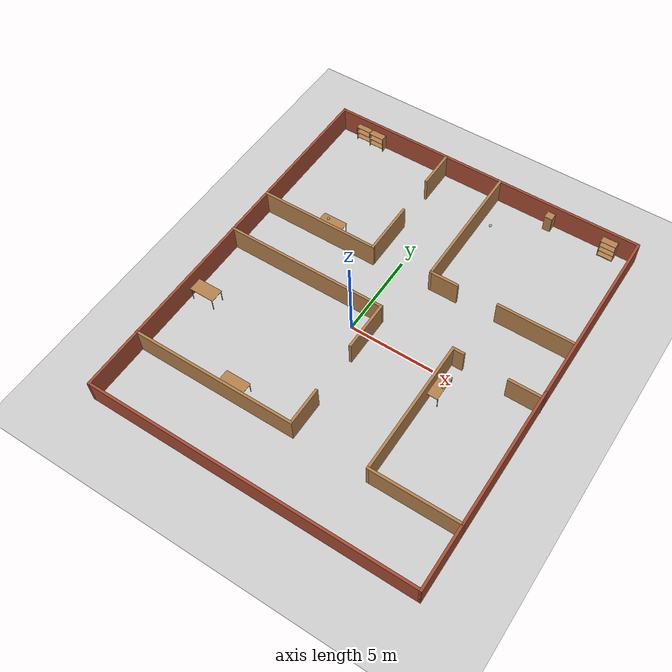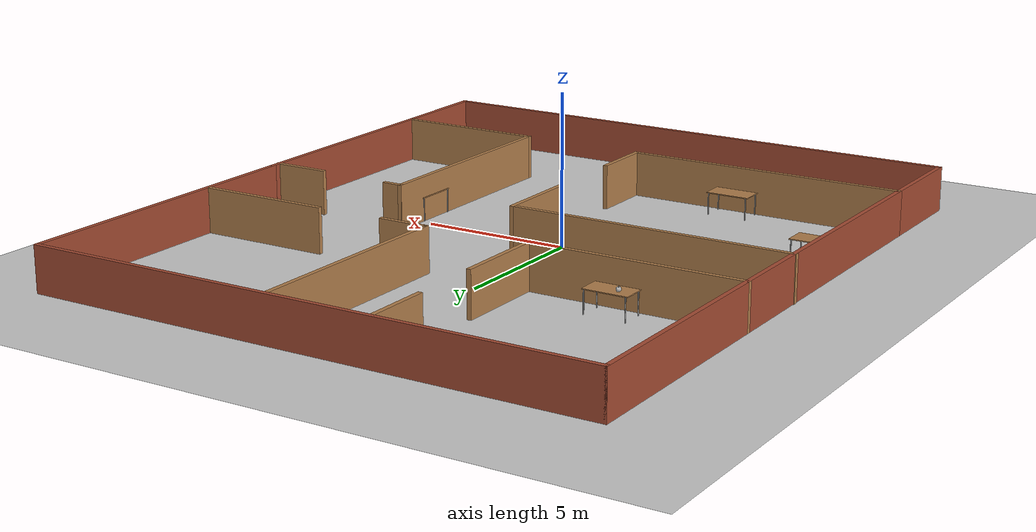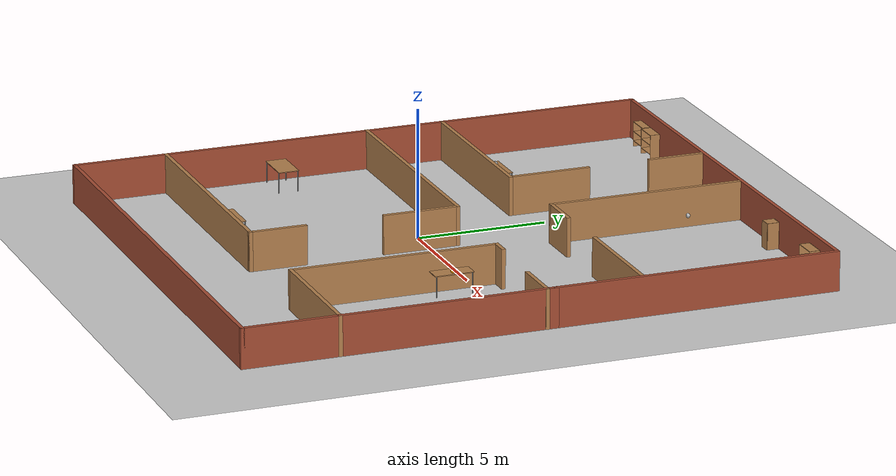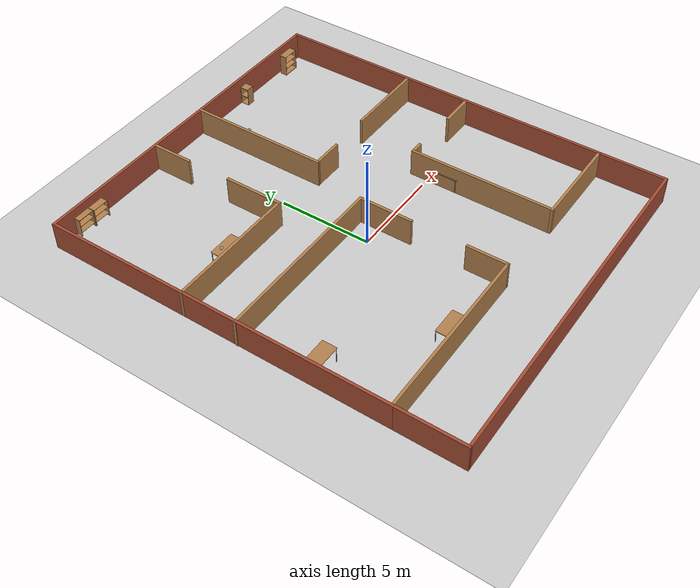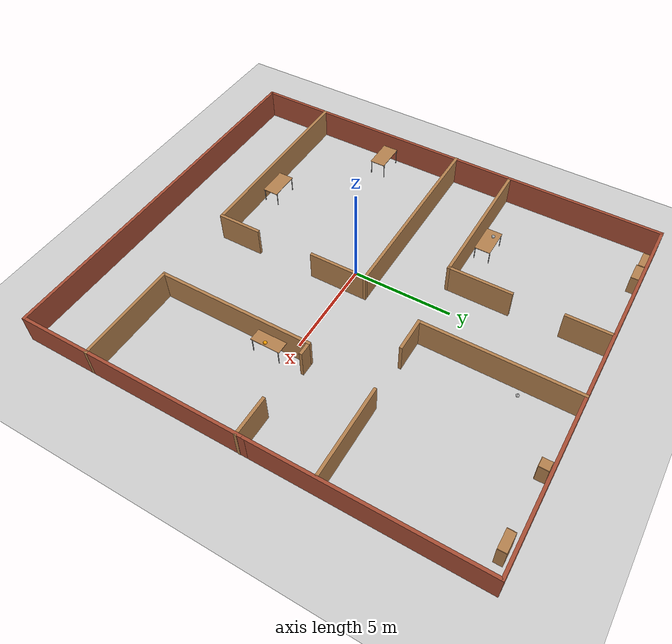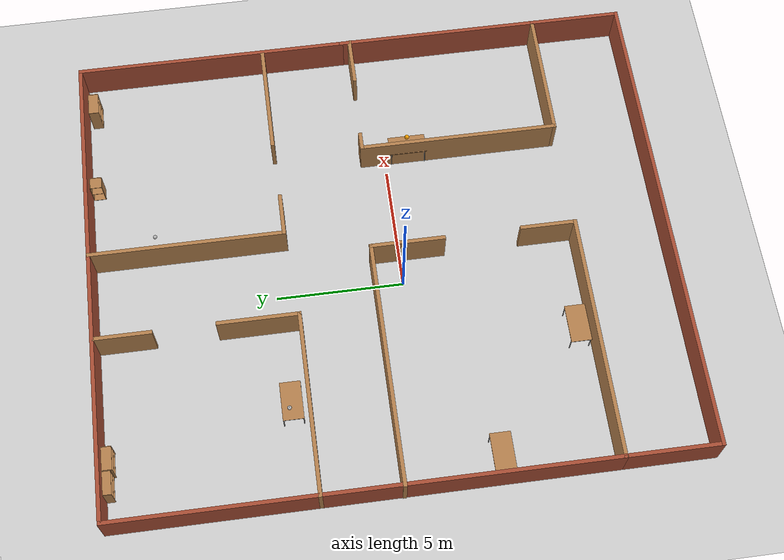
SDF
<sdf version="1.6">
 <world name="default">
  <light name="sun" type="directional">
   <pose>0 0 10 0 -0 0</pose>
   <diffuse>0.8 0.8 0.8 1</diffuse>
   <specular>0.2 0.2 0.2 1</specular>
   <attenuation>
    <range>1000</range>
    <constant>0.9</constant>
    <linear>0.01</linear>
    <quadratic>0.001</quadratic>
   </attenuation>
   <direction>-0.5 0.1 -0.9</direction>
  </light>
  <model name="ground_plane">
   <static>1</static>
   <link name="link">
    <collision name="collision">
     <geometry><plane><normal>0 0 1</normal><size>100 100</size></plane></geometry>
     <surface>
      <contact><collide_bitmask>65535</collide_bitmask></contact>
      <friction><ode><mu>100</mu><mu2>50</mu2></ode></friction>
     </surface>
    </collision>
    <visual name="visual">
     <cast_shadows>0</cast_shadows>
     <geometry><plane><normal>0 0 1</normal><size>100 100</size></plane></geometry>
     <material>
      <script><uri>file://media/materials/scripts/gazebo.material</uri><name>Gazebo/Grey</name></script>
     </material>
    </visual>
   </link>
  </model>
  <gravity>0 0 -9.8</gravity>
  <magnetic_field>6e-06 2.3e-05 -4.2e-05</magnetic_field>
  <atmosphere type="adiabatic"/>
  <physics name="default_physics" default="0" type="ode">
   <max_step_size>0.001</max_step_size>
   <real_time_factor>1</real_time_factor>
   <real_time_update_rate>1000</real_time_update_rate>
  </physics>
  <scene><ambient>0.4 0.4 0.4 1</ambient><background>0.7 0.7 0.7 1</background><shadows>1</shadows></scene>
  <audio><device>default</device></audio>
  <spherical_coordinates>
   <surface_model>EARTH_WGS84</surface_model>
   <latitude_deg>0</latitude_deg>
   <longitude_deg>0</longitude_deg>
   <elevation>0</elevation>
   <heading_deg>0</heading_deg>
  </spherical_coordinates>
  <model name="FetchENV">
   <pose>1.08764 0.755812 -1.01511 0 -0 0</pose>
   <link name="Wall_100">
    <collision name="Wall_100_Collision">
     <geometry><box><size>8 0.15 2.5</size></box></geometry>
     <pose>0 0 1.25 0 -0 0</pose>
    </collision>
    <visual name="Wall_100_Visual">
     <pose>0 0 1.25 0 -0 0</pose>
     <geometry><box><size>8 0.15 2.5</size></box></geometry>
     <material>
      <script><uri>file://media/materials/scripts/gazebo.material</uri><name>Gazebo/Bricks</name></script>
      <ambient>1 1 1 1</ambient>
     </material>
     <meta><layer>0</layer></meta>
    </visual>
    <pose>-9.54309 7.35 0 0 -0 1.5708</pose>
   </link>
   <link name="Wall_101">
    <collision name="Wall_101_Collision">
     <geometry><box><size>19.25 0.15 2.5</size></box></geometry>
     <pose>0 0 1.25 0 -0 0</pose>
    </collision>
    <visual name="Wall_101_Visual">
     <pose>0 0 1.25 0 -0 0</pose>
     <geometry><box><size>19.25 0.15 2.5</size></box></geometry>
     <material>
      <script><uri>file://media/materials/scripts/gazebo.material</uri><name>Gazebo/Bricks</name></script>
      <ambient>1 1 1 1</ambient>
     </material>
     <meta><layer>0</layer></meta>
    </visual>
    <pose>0.006908 11.275 0 0 -0 0</pose>
   </link>
   <link name="Wall_102">
    <collision name="Wall_102_Collision">
     <geometry><box><size>11 0.15 2.5</size></box></geometry>
     <pose>0 0 1.25 0 -0 0</pose>
    </collision>
    <visual name="Wall_102_Visual">
     <pose>0 0 1.25 0 -0 0</pose>
     <geometry><box><size>11 0.15 2.5</size></box></geometry>
     <material>
      <script><uri>file://media/materials/scripts/gazebo.material</uri><name>Gazebo/Bricks</name></script>
      <ambient>1 1 1 1</ambient>
     </material>
     <meta><layer>0</layer></meta>
    </visual>
    <pose>9.55691 5.85 0 0 -0 -1.5708</pose>
   </link>
   <link name="Wall_103">
    <collision name="Wall_103_Collision">
     <geometry><box><size>8.25 0.15 2.5</size></box></geometry>
     <pose>0 0 1.25 0 -0 0</pose>
    </collision>
    <visual name="Wall_103_Visual">
     <pose>0 0 1.25 0 -0 0</pose>
     <geometry><box><size>8.25 0.15 2.5</size></box></geometry>
     <material>
      <script><uri>file://media/materials/scripts/gazebo.material</uri><name>Gazebo/Bricks</name></script>
      <ambient>1 1 1 1</ambient>
     </material>
     <meta><layer>0</layer></meta>
    </visual>
    <pose>9.55691 -3.625 0 0 -0 -1.5708</pose>
   </link>
   <link name="Wall_104">
    <collision name="Wall_104_Collision">
     <geometry><box><size>5.25 0.15 2.5</size></box></geometry>
     <pose>0 0 1.25 0 -0 0</pose>
    </collision>
    <visual name="Wall_104_Visual">
     <pose>0 0 1.25 0 -0 0</pose>
     <geometry><box><size>5.25 0.15 2.5</size></box></geometry>
     <material>
      <script><uri>file://media/materials/scripts/gazebo.material</uri><name>Gazebo/Wood</name></script>
      <ambient>1 1 1 1</ambient>
     </material>
     <meta><layer>0</layer></meta>
    </visual>
    <pose>7.00691 -7.675 0 0 -0 3.14159</pose>
   </link>
   <link name="Wall_108">
    <collision name="Wall_108_Collision">
     <geometry><box><size>11.25 0.15 2.5</size></box></geometry>
     <pose>0 0 1.25 0 -0 0</pose>
    </collision>
    <visual name="Wall_108_Visual">
     <pose>0 0 1.25 0 -0 0</pose>
     <geometry><box><size>11.25 0.15 2.5</size></box></geometry>
     <material>
      <script><uri>file://media/materials/scripts/gazebo.material</uri><name>Gazebo/Bricks</name></script>
      <ambient>1 1 1 1</ambient>
     </material>
     <meta><layer>0</layer></meta>
    </visual>
    <pose>-9.54309 -2.125 0 0 -0 -1.5708</pose>
   </link>
   <link name="Wall_109">
    <collision name="Wall_109_Collision">
     <geometry><box><size>9.75 0.15 2.5</size></box></geometry>
     <pose>0 0 1.25 0 -0 0</pose>
    </collision>
    <visual name="Wall_109_Visual">
     <pose>0 0 1.25 0 -0 0</pose>
     <geometry><box><size>9.75 0.15 2.5</size></box></geometry>
     <material>
      <script><uri>file://media/materials/scripts/gazebo.material</uri><name>Gazebo/Wood</name></script>
      <ambient>1 1 1 1</ambient>
     </material>
     <meta><layer>0</layer></meta>
    </visual>
    <pose>-4.74309 -7.675 0 0 -0 0</pose>
   </link>
   <link name="Wall_111">
    <collision name="Wall_111_Collision">
     <geometry><box><size>2.25 0.15 2.5</size></box></geometry>
     <pose>0 0 1.25 0 -0 0</pose>
    </collision>
    <visual name="Wall_111_Visual">
     <pose>0 0 1.25 0 -0 0</pose>
     <geometry><box><size>2.25 0.15 2.5</size></box></geometry>
     <material>
      <script><uri>file://media/materials/scripts/gazebo.material</uri><name>Gazebo/Wood</name></script>
      <ambient>1 1 1 1</ambient>
     </material>
     <meta><layer>0</layer></meta>
    </visual>
    <pose>0.056908 -6.625 0 0 -0 1.5708</pose>
   </link>
   <link name="Wall_113">
    <collision name="Wall_113_Collision">
     <geometry><box><size>3 0.15 2.5</size></box></geometry>
     <pose>0 0 1.25 0 -0 0</pose>
    </collision>
    <visual name="Wall_113_Visual">
     <pose>0 0 1.25 0 -0 0</pose>
     <geometry><box><size>3 0.15 2.5</size></box></geometry>
     <material>
      <script><uri>file://media/materials/scripts/gazebo.material</uri><name>Gazebo/Wood</name></script>
      <ambient>1 1 1 1</ambient>
     </material>
     <meta><layer>0</layer></meta>
    </visual>
    <pose>0.03172 -1.04948 0 0 -0 1.5708</pose>
   </link>
   <link name="Wall_114">
    <collision name="Wall_114_Collision">
     <geometry><box><size>9.75 0.15 2.5</size></box></geometry>
     <pose>0 0 1.25 0 -0 0</pose>
    </collision>
    <visual name="Wall_114_Visual">
     <pose>0 0 1.25 0 -0 0</pose>
     <geometry><box><size>9.75 0.15 2.5</size></box></geometry>
     <material>
      <script><uri>file://media/materials/scripts/gazebo.material</uri><name>Gazebo/Wood</name></script>
      <ambient>1 1 1 1</ambient>
     </material>
     <meta><layer>0</layer></meta>
    </visual>
    <pose>-4.76828 0.375517 0 0 -0 3.14159</pose>
   </link>
   <link name="Wall_116">
    <collision name="Wall_116_Collision">
     <geometry><box><size>8 0.15 2.5</size></box></geometry>
     <pose>0 0 1.25 0 -0 0</pose>
    </collision>
    <visual name="Wall_116_Visual">
     <pose>0 0 1.25 0 -0 0</pose>
     <geometry><box><size>8 0.15 2.5</size></box></geometry>
     <material>
      <script><uri>file://media/materials/scripts/gazebo.material</uri><name>Gazebo/Wood</name></script>
      <ambient>1 1 1 1</ambient>
     </material>
     <meta><layer>0</layer></meta>
    </visual>
    <pose>4.45691 -3.75 0 0 -0 1.5708</pose>
   </link>
   <link name="Wall_120">
    <collision name="Wall_120_Collision">
     <geometry><box><size>0.75 0.15 2.5</size></box></geometry>
     <pose>0 0 1.25 0 -0 0</pose>
    </collision>
    <visual name="Wall_120_Visual">
     <pose>0 0 1.25 0 -0 0</pose>
     <geometry><box><size>0.75 0.15 2.5</size></box></geometry>
     <material>
      <script><uri>file://media/materials/scripts/gazebo.material</uri><name>Gazebo/Wood</name></script>
      <ambient>1 1 1 1</ambient>
     </material>
     <meta><layer>0</layer></meta>
    </visual>
    <pose>4.75691 0.175 0 0 -0 0</pose>
   </link>
   <link name="Wall_122">
    <collision name="Wall_122_Collision">
     <geometry><box><size>2 0.15 2.5</size></box></geometry>
     <pose>0 0 1.25 0 -0 0</pose>
    </collision>
    <visual name="Wall_122_Visual">
     <pose>0 0 1.25 0 -0 0</pose>
     <geometry><box><size>2 0.15 2.5</size></box></geometry>
     <material>
      <script><uri>file://media/materials/scripts/gazebo.material</uri><name>Gazebo/Wood</name></script>
      <ambient>1 1 1 1</ambient>
     </material>
     <meta><layer>0</layer></meta>
    </visual>
    <pose>8.64328 0.074218 0 0 -0 0</pose>
   </link>
   <link name="Wall_126">
    <collision name="Wall_126_Collision">
     <geometry><box><size>2.25 0.15 2.5</size></box></geometry>
     <pose>0 0 1.25 0 -0 0</pose>
    </collision>
    <visual name="Wall_126_Visual">
     <pose>0 0 1.25 0 -0 0</pose>
     <geometry><box><size>2.25 0.15 2.5</size></box></geometry>
     <material>
      <script><uri>file://media/materials/scripts/gazebo.material</uri><name>Gazebo/Wood</name></script>
      <ambient>1 1 1 1</ambient>
     </material>
     <meta><layer>0</layer></meta>
    </visual>
    <pose>-2.47722 10.1244 0 0 -0 -1.5708</pose>
   </link>
   <link name="Wall_128">
    <collision name="Wall_128_Collision">
     <geometry><box><size>7.75 0.15 2.5</size></box></geometry>
     <pose>0 0 1.25 0 -0 0</pose>
    </collision>
    <visual name="Wall_128_Visual">
     <pose>0 0 1.25 0 -0 0</pose>
     <geometry><box><size>7.75 0.15 2.5</size></box></geometry>
     <material>
      <script><uri>file://media/materials/scripts/gazebo.material</uri><name>Gazebo/Wood</name></script>
      <ambient>1 1 1 1</ambient>
     </material>
     <meta><layer>0</layer></meta>
    </visual>
    <pose>1.0586 7.46742 0 0 -0 -1.5708</pose>
   </link>
   <link name="Wall_129">
    <collision name="Wall_129_Collision">
     <geometry><box><size>1.75 0.15 2.5</size></box></geometry>
     <pose>0 0 1.25 0 -0 0</pose>
    </collision>
    <visual name="Wall_129_Visual">
     <pose>0 0 1.25 0 -0 0</pose>
     <geometry><box><size>1.75 0.15 2.5</size></box></geometry>
     <material>
      <script><uri>file://media/materials/scripts/gazebo.material</uri><name>Gazebo/Wood</name></script>
      <ambient>1 1 1 1</ambient>
     </material>
     <meta><layer>0</layer></meta>
    </visual>
    <pose>1.8586 3.66742 0 0 -0 0</pose>
   </link>
   <link name="Wall_131">
    <collision name="Wall_131_Collision">
     <geometry><box><size>4.5 0.15 2.5</size></box></geometry>
     <pose>0 0 1.25 0 -0 0</pose>
    </collision>
    <visual name="Wall_131_Visual">
     <pose>0 0 1.25 0 -0 0</pose>
     <geometry><box><size>4.5 0.15 2.5</size></box></geometry>
     <material>
      <script><uri>file://media/materials/scripts/gazebo.material</uri><name>Gazebo/Wood</name></script>
      <ambient>1 1 1 1</ambient>
     </material>
     <meta><layer>0</layer></meta>
    </visual>
    <pose>7.2579 3.73055 0 0 -0 3.14159</pose>
   </link>
   <link name="Wall_140">
    <collision name="Wall_140_Collision">
     <geometry><box><size>3.75 0.15 2.5</size></box></geometry>
     <pose>0 0 1.25 0 -0 0</pose>
    </collision>
    <visual name="Wall_140_Visual">
     <pose>0 0 1.25 0 -0 0</pose>
     <geometry><box><size>3.75 0.15 2.5</size></box></geometry>
     <material>
      <script><uri>file://media/materials/scripts/gazebo.material</uri><name>Gazebo/Bricks</name></script>
      <ambient>1 1 1 1</ambient>
     </material>
     <meta><layer>0</layer></meta>
    </visual>
    <pose>-9.54309 -9.475 0 0 -0 -1.5708</pose>
   </link>
   <link name="Wall_141">
    <collision name="Wall_141_Collision">
     <geometry><box><size>19.25 0.15 2.5</size></box></geometry>
     <pose>0 0 1.25 0 -0 0</pose>
    </collision>
    <visual name="Wall_141_Visual">
     <pose>0 0 1.25 0 -0 0</pose>
     <geometry><box><size>19.25 0.15 2.5</size></box></geometry>
     <material>
      <script><uri>file://media/materials/scripts/gazebo.material</uri><name>Gazebo/Bricks</name></script>
      <ambient>1 1 1 1</ambient>
     </material>
     <meta><layer>0</layer></meta>
    </visual>
    <pose>0.006908 -11.275 0 0 -0 0</pose>
   </link>
   <link name="Wall_143">
    <collision name="Wall_143_Collision">
     <geometry><box><size>3.75 0.15 2.5</size></box></geometry>
     <pose>0 0 1.25 0 -0 0</pose>
    </collision>
    <visual name="Wall_143_Visual">
     <pose>0 0 1.25 0 -0 0</pose>
     <geometry><box><size>3.75 0.15 2.5</size></box></geometry>
     <material>
      <script><uri>file://media/materials/scripts/gazebo.material</uri><name>Gazebo/Bricks</name></script>
      <ambient>1 1 1 1</ambient>
     </material>
     <meta><layer>0</layer></meta>
    </visual>
    <pose>9.55691 -9.475 0 0 -0 1.5708</pose>
   </link>
   <link name="Wall_98">
    <collision name="Wall_98_Collision">
     <geometry><box><size>3.25 0.15 2.5</size></box></geometry>
     <pose>0 0 1.25 0 -0 0</pose>
    </collision>
    <visual name="Wall_98_Visual">
     <pose>0 0 1.25 0 -0 0</pose>
     <geometry><box><size>3.25 0.15 2.5</size></box></geometry>
     <material>
      <script><uri>file://media/materials/scripts/gazebo.material</uri><name>Gazebo/Wood</name></script>
      <ambient>1 1 1 1</ambient>
     </material>
     <meta><layer>0</layer></meta>
    </visual>
    <pose>-2.44309 4.975 0 0 -0 -1.5708</pose>
   </link>
   <link name="Wall_99">
    <collision name="Wall_99_Collision">
     <geometry><box><size>7.25 0.15 2.5</size></box></geometry>
     <pose>0 0 1.25 0 -0 0</pose>
    </collision>
    <visual name="Wall_99_Visual">
     <pose>0 0 1.25 0 -0 0</pose>
     <geometry><box><size>7.25 0.15 2.5</size></box></geometry>
     <material>
      <script><uri>file://media/materials/scripts/gazebo.material</uri><name>Gazebo/Wood</name></script>
      <ambient>1 1 1 1</ambient>
     </material>
     <meta><layer>0</layer></meta>
    </visual>
    <pose>-5.99309 3.425 0 0 -0 3.14159</pose>
   </link>
   <static>1</static>
  </model>
  <model name="table">
   <static>1</static>
   <link name="link">
    <collision name="surface">
     <pose>0 0 1 0 -0 0</pose>
     <geometry><box><size>1.5 0.8 0.03</size></box></geometry>
     <surface><friction><ode><mu>0.6</mu><mu2>0.6</mu2></ode></friction></surface>
    </collision>
    <visual name="visual1">
     <pose>0 0 1 0 -0 0</pose>
     <geometry><box><size>1.5 0.8 0.03</size></box></geometry>
     <material>
      <script><uri>file://media/materials/scripts/gazebo.material</uri><name>Gazebo/Wood</name></script>
     </material>
    </visual>
    <collision name="front_left_leg">
     <pose>0.68 0.38 0.5 0 -0 0</pose>
     <geometry><cylinder><radius>0.02</radius><length>1</length></cylinder></geometry>
    </collision>
    <visual name="front_left_leg">
     <pose>0.68 0.38 0.5 0 -0 0</pose>
     <geometry><cylinder><radius>0.02</radius><length>1</length></cylinder></geometry>
     <material>
      <script><uri>file://media/materials/scripts/gazebo.material</uri><name>Gazebo/Grey</name></script>
     </material>
    </visual>
    <collision name="front_right_leg">
     <pose>0.68 -0.38 0.5 0 -0 0</pose>
     <geometry><cylinder><radius>0.02</radius><length>1</length></cylinder></geometry>
    </collision>
    <visual name="front_right_leg">
     <pose>0.68 -0.38 0.5 0 -0 0</pose>
     <geometry><cylinder><radius>0.02</radius><length>1</length></cylinder></geometry>
     <material>
      <script><uri>file://media/materials/scripts/gazebo.material</uri><name>Gazebo/Grey</name></script>
     </material>
    </visual>
    <collision name="back_right_leg">
     <pose>-0.68 -0.38 0.5 0 -0 0</pose>
     <geometry><cylinder><radius>0.02</radius><length>1</length></cylinder></geometry>
    </collision>
    <visual name="back_right_leg">
     <pose>-0.68 -0.38 0.5 0 -0 0</pose>
     <geometry><cylinder><radius>0.02</radius><length>1</length></cylinder></geometry>
     <material>
      <script><uri>file://media/materials/scripts/gazebo.material</uri><name>Gazebo/Grey</name></script>
     </material>
    </visual>
    <collision name="back_left_leg">
     <pose>-0.68 0.38 0.5 0 -0 0</pose>
     <geometry><cylinder><radius>0.02</radius><length>1</length></cylinder></geometry>
    </collision>
    <visual name="back_left_leg">
     <pose>-0.68 0.38 0.5 0 -0 0</pose>
     <geometry><cylinder><radius>0.02</radius><length>1</length></cylinder></geometry>
     <material>
      <script><uri>file://media/materials/scripts/gazebo.material</uri><name>Gazebo/Grey</name></script>
     </material>
    </visual>
   </link>
   <pose>-4.52768 4.84387 -0.258032 0 -0 0</pose>
  </model>
  <model name="bookshelf">
   <static>1</static>
   <link name="link">
    <inertial><mass>1</mass></inertial>
    <collision name="back">
     <pose>0 0.005 0.6 0 -0 0</pose>
     <geometry><box><size>0.9 0.01 1.2</size></box></geometry>
    </collision>
    <visual name="visual1">
     <pose>0 0.005 0.6 0 -0 0</pose>
     <geometry><box><size>0.9 0.01 1.2</size></box></geometry>
     <material>
      <script><uri>file://media/materials/scripts/gazebo.material</uri><name>Gazebo/Wood</name></script>
     </material>
    </visual>
    <collision name="left_side">
     <pose>0.45 -0.195 0.6 0 -0 0</pose>
     <geometry><box><size>0.02 0.4 1.2</size></box></geometry>
    </collision>
    <visual name="visual2">
     <pose>0.45 -0.195 0.6 0 -0 0</pose>
     <geometry><box><size>0.02 0.4 1.2</size></box></geometry>
     <material>
      <script><uri>file://media/materials/scripts/gazebo.material</uri><name>Gazebo/Wood</name></script>
     </material>
    </visual>
    <collision name="right_side">
     <pose>-0.45 -0.195 0.6 0 -0 0</pose>
     <geometry><box><size>0.02 0.4 1.2</size></box></geometry>
    </collision>
    <visual name="visual3">
     <pose>-0.45 -0.195 0.6 0 -0 0</pose>
     <geometry><box><size>0.02 0.4 1.2</size></box></geometry>
     <material>
      <script><uri>file://media/materials/scripts/gazebo.material</uri><name>Gazebo/Wood</name></script>
     </material>
    </visual>
    <collision name="bottom">
     <pose>0 -0.195 0.03 0 -0 0</pose>
     <geometry><box><size>0.88 0.4 0.06</size></box></geometry>
    </collision>
    <visual name="visual4">
     <pose>0 -0.195 0.03 0 -0 0</pose>
     <geometry><box><size>0.88 0.4 0.06</size></box></geometry>
     <material>
      <script><uri>file://media/materials/scripts/gazebo.material</uri><name>Gazebo/Wood</name></script>
     </material>
    </visual>
    <collision name="top">
     <pose>0 -0.195 1.19 0 -0 0</pose>
     <geometry><box><size>0.88 0.4 0.02</size></box></geometry>
    </collision>
    <visual name="visual5">
     <pose>0 -0.195 1.19 0 -0 0</pose>
     <geometry><box><size>0.88 0.4 0.02</size></box></geometry>
     <material>
      <script><uri>file://media/materials/scripts/gazebo.material</uri><name>Gazebo/Wood</name></script>
     </material>
    </visual>
    <collision name="low_shelf">
     <pose>0 -0.195 0.43 0 -0 0</pose>
     <geometry><box><size>0.88 0.4 0.02</size></box></geometry>
    </collision>
    <visual name="visual6">
     <pose>0 -0.195 0.43 0 -0 0</pose>
     <geometry><box><size>0.88 0.4 0.02</size></box></geometry>
     <material>
      <script><uri>file://media/materials/scripts/gazebo.material</uri><name>Gazebo/Wood</name></script>
     </material>
    </visual>
    <collision name="high_shelf">
     <pose>0 -0.195 0.8 0 -0 0</pose>
     <geometry><box><size>0.88 0.4 0.02</size></box></geometry>
    </collision>
    <visual name="visual7">
     <pose>0 -0.195 0.8 0 -0 0</pose>
     <geometry><box><size>0.88 0.4 0.02</size></box></geometry>
     <material>
      <script><uri>file://media/materials/scripts/gazebo.material</uri><name>Gazebo/Wood</name></script>
     </material>
    </visual>
   </link>
   <pose>9.1929 11.799 0 0 -0 0</pose>
  </model>
  <model name="cabinet">
   <static>1</static>
   <link name="cabinet_bottom_plate">
    <inertial>
     <pose>0 0 -1 0 -0 0</pose>
     <inertia><ixx>2.05</ixx><ixy>0</ixy><ixz>0</ixz><iyy>2.05</iyy><iyz>0</iyz><izz>2.05</izz></inertia>
     <mass>25</mass>
    </inertial>
    <collision name="cabinet_bottom_plate_geom">
     <pose>0 0 0.01 0 -0 0</pose>
     <geometry><box><size>0.45 0.45 0.02</size></box></geometry>
    </collision>
    <visual name="cabinet_bottom_plate_geom_visual">
     <pose>0 0 0.01 0 -0 0</pose>
     <geometry><box><size>0.45 0.45 0.02</size></box></geometry>
     <material>
      <script><uri>file://media/materials/scripts/gazebo.material</uri><name>Gazebo/Wood</name></script>
     </material>
    </visual>
    <collision name="cabinet_bottom_plate_geom_cabinet_back_plate">
     <pose>0.235 0 0.51 0 -0 0</pose>
     <geometry><box><size>0.02 0.45 1.02</size></box></geometry>
    </collision>
    <visual name="cabinet_bottom_plate_geom_cabinet_back_plate_visual">
     <pose>0.235 0 0.51 0 -0 0</pose>
     <geometry><box><size>0.02 0.45 1.02</size></box></geometry>
     <material>
      <script><uri>file://media/materials/scripts/gazebo.material</uri><name>Gazebo/Wood</name></script>
     </material>
    </visual>
    <collision name="cabinet_bottom_plate_geom_cabinet_left_plate">
     <pose>0 0.235 0.51 0 -0 0</pose>
     <geometry><box><size>0.45 0.02 1.02</size></box></geometry>
    </collision>
    <visual name="cabinet_bottom_plate_geom_cabinet_left_plate_visual">
     <pose>0 0.235 0.51 0 -0 0</pose>
     <geometry><box><size>0.45 0.02 1.02</size></box></geometry>
     <material>
      <script><uri>file://media/materials/scripts/gazebo.material</uri><name>Gazebo/Wood</name></script>
     </material>
    </visual>
    <collision name="cabinet_bottom_plate_geom_cabinet_middle_plate">
     <pose>0 0 0.51 0 -0 0</pose>
     <geometry><box><size>0.45 0.45 0.02</size></box></geometry>
    </collision>
    <visual name="cabinet_bottom_plate_geom_cabinet_middle_plate_visual">
     <pose>0 0 0.51 0 -0 0</pose>
     <geometry><box><size>0.45 0.45 0.02</size></box></geometry>
     <material>
      <script><uri>file://media/materials/scripts/gazebo.material</uri><name>Gazebo/Wood</name></script>
     </material>
    </visual>
    <collision name="cabinet_bottom_plate_geom_cabinet_right_plate">
     <pose>0 -0.235 0.51 0 -0 0</pose>
     <geometry><box><size>0.45 0.02 1.02</size></box></geometry>
    </collision>
    <visual name="cabinet_bottom_plate_geom_cabinet_right_plate_visual">
     <pose>0 -0.235 0.51 0 -0 0</pose>
     <geometry><box><size>0.45 0.02 1.02</size></box></geometry>
     <material>
      <script><uri>file://media/materials/scripts/gazebo.material</uri><name>Gazebo/Wood</name></script>
     </material>
    </visual>
    <collision name="cabinet_bottom_plate_geom_cabinet_top_plate">
     <pose>0 0 1.01 0 -0 0</pose>
     <geometry><box><size>0.45 0.45 0.02</size></box></geometry>
    </collision>
    <visual name="cabinet_bottom_plate_geom_cabinet_top_plate_visual">
     <pose>0 0 1.01 0 -0 0</pose>
     <geometry><box><size>0.45 0.45 0.02</size></box></geometry>
     <material>
      <script><uri>file://media/materials/scripts/gazebo.material</uri><name>Gazebo/Wood</name></script>
     </material>
    </visual>
   </link>
   <pose>5.55463 11.6901 0 0 -0 0</pose>
  </model>
  <model name="bookshelf_clone">
   <static>1</static>
   <link name="link">
    <inertial><mass>1</mass></inertial>
    <collision name="back">
     <pose>0 0.005 0.6 0 -0 0</pose>
     <geometry><box><size>0.9 0.01 1.2</size></box></geometry>
    </collision>
    <visual name="visual1">
     <pose>0 0.005 0.6 0 -0 0</pose>
     <geometry><box><size>0.9 0.01 1.2</size></box></geometry>
     <material>
      <script><uri>file://media/materials/scripts/gazebo.material</uri><name>Gazebo/Wood</name></script>
     </material>
    </visual>
    <collision name="left_side">
     <pose>0.45 -0.195 0.6 0 -0 0</pose>
     <geometry><box><size>0.02 0.4 1.2</size></box></geometry>
    </collision>
    <visual name="visual2">
     <pose>0.45 -0.195 0.6 0 -0 0</pose>
     <geometry><box><size>0.02 0.4 1.2</size></box></geometry>
     <material>
      <script><uri>file://media/materials/scripts/gazebo.material</uri><name>Gazebo/Wood</name></script>
     </material>
    </visual>
    <collision name="right_side">
     <pose>-0.45 -0.195 0.6 0 -0 0</pose>
     <geometry><box><size>0.02 0.4 1.2</size></box></geometry>
    </collision>
    <visual name="visual3">
     <pose>-0.45 -0.195 0.6 0 -0 0</pose>
     <geometry><box><size>0.02 0.4 1.2</size></box></geometry>
     <material>
      <script><uri>file://media/materials/scripts/gazebo.material</uri><name>Gazebo/Wood</name></script>
     </material>
    </visual>
    <collision name="bottom">
     <pose>0 -0.195 0.03 0 -0 0</pose>
     <geometry><box><size>0.88 0.4 0.06</size></box></geometry>
    </collision>
    <visual name="visual4">
     <pose>0 -0.195 0.03 0 -0 0</pose>
     <geometry><box><size>0.88 0.4 0.06</size></box></geometry>
     <material>
      <script><uri>file://media/materials/scripts/gazebo.material</uri><name>Gazebo/Wood</name></script>
     </material>
    </visual>
    <collision name="top">
     <pose>0 -0.195 1.19 0 -0 0</pose>
     <geometry><box><size>0.88 0.4 0.02</size></box></geometry>
    </collision>
    <visual name="visual5">
     <pose>0 -0.195 1.19 0 -0 0</pose>
     <geometry><box><size>0.88 0.4 0.02</size></box></geometry>
     <material>
      <script><uri>file://media/materials/scripts/gazebo.material</uri><name>Gazebo/Wood</name></script>
     </material>
    </visual>
    <collision name="low_shelf">
     <pose>0 -0.195 0.43 0 -0 0</pose>
     <geometry><box><size>0.88 0.4 0.02</size></box></geometry>
    </collision>
    <visual name="visual6">
     <pose>0 -0.195 0.43 0 -0 0</pose>
     <geometry><box><size>0.88 0.4 0.02</size></box></geometry>
     <material>
      <script><uri>file://media/materials/scripts/gazebo.material</uri><name>Gazebo/Wood</name></script>
     </material>
    </visual>
    <collision name="high_shelf">
     <pose>0 -0.195 0.8 0 -0 0</pose>
     <geometry><box><size>0.88 0.4 0.02</size></box></geometry>
    </collision>
    <visual name="visual7">
     <pose>0 -0.195 0.8 0 -0 0</pose>
     <geometry><box><size>0.88 0.4 0.02</size></box></geometry>
     <material>
      <script><uri>file://media/materials/scripts/gazebo.material</uri><name>Gazebo/Wood</name></script>
     </material>
    </visual>
   </link>
   <pose>-6.86254 12.0257 -0.226199 0 -0 0</pose>
  </model>
  <model name="bookshelf_clone_0">
   <static>1</static>
   <link name="link">
    <inertial><mass>1</mass></inertial>
    <collision name="back">
     <pose>0 0.005 0.6 0 -0 0</pose>
     <geometry><box><size>0.9 0.01 1.2</size></box></geometry>
    </collision>
    <visual name="visual1">
     <pose>0 0.005 0.6 0 -0 0</pose>
     <geometry><box><size>0.9 0.01 1.2</size></box></geometry>
     <material>
      <script><uri>file://media/materials/scripts/gazebo.material</uri><name>Gazebo/Wood</name></script>
     </material>
    </visual>
    <collision name="left_side">
     <pose>0.45 -0.195 0.6 0 -0 0</pose>
     <geometry><box><size>0.02 0.4 1.2</size></box></geometry>
    </collision>
    <visual name="visual2">
     <pose>0.45 -0.195 0.6 0 -0 0</pose>
     <geometry><box><size>0.02 0.4 1.2</size></box></geometry>
     <material>
      <script><uri>file://media/materials/scripts/gazebo.material</uri><name>Gazebo/Wood</name></script>
     </material>
    </visual>
    <collision name="right_side">
     <pose>-0.45 -0.195 0.6 0 -0 0</pose>
     <geometry><box><size>0.02 0.4 1.2</size></box></geometry>
    </collision>
    <visual name="visual3">
     <pose>-0.45 -0.195 0.6 0 -0 0</pose>
     <geometry><box><size>0.02 0.4 1.2</size></box></geometry>
     <material>
      <script><uri>file://media/materials/scripts/gazebo.material</uri><name>Gazebo/Wood</name></script>
     </material>
    </visual>
    <collision name="bottom">
     <pose>0 -0.195 0.03 0 -0 0</pose>
     <geometry><box><size>0.88 0.4 0.06</size></box></geometry>
    </collision>
    <visual name="visual4">
     <pose>0 -0.195 0.03 0 -0 0</pose>
     <geometry><box><size>0.88 0.4 0.06</size></box></geometry>
     <material>
      <script><uri>file://media/materials/scripts/gazebo.material</uri><name>Gazebo/Wood</name></script>
     </material>
    </visual>
    <collision name="top">
     <pose>0 -0.195 1.19 0 -0 0</pose>
     <geometry><box><size>0.88 0.4 0.02</size></box></geometry>
    </collision>
    <visual name="visual5">
     <pose>0 -0.195 1.19 0 -0 0</pose>
     <geometry><box><size>0.88 0.4 0.02</size></box></geometry>
     <material>
      <script><uri>file://media/materials/scripts/gazebo.material</uri><name>Gazebo/Wood</name></script>
     </material>
    </visual>
    <collision name="low_shelf">
     <pose>0 -0.195 0.43 0 -0 0</pose>
     <geometry><box><size>0.88 0.4 0.02</size></box></geometry>
    </collision>
    <visual name="visual6">
     <pose>0 -0.195 0.43 0 -0 0</pose>
     <geometry><box><size>0.88 0.4 0.02</size></box></geometry>
     <material>
      <script><uri>file://media/materials/scripts/gazebo.material</uri><name>Gazebo/Wood</name></script>
     </material>
    </visual>
    <collision name="high_shelf">
     <pose>0 -0.195 0.8 0 -0 0</pose>
     <geometry><box><size>0.88 0.4 0.02</size></box></geometry>
    </collision>
    <visual name="visual7">
     <pose>0 -0.195 0.8 0 -0 0</pose>
     <geometry><box><size>0.88 0.4 0.02</size></box></geometry>
     <material>
      <script><uri>file://media/materials/scripts/gazebo.material</uri><name>Gazebo/Wood</name></script>
     </material>
    </visual>
   </link>
   <pose>-5.93656 11.9662 -0.233324 0 -0 0</pose>
  </model>
  <model name="table_0">
   <static>1</static>
   <link name="link">
    <collision name="surface">
     <pose>0 0 1 0 -0 0</pose>
     <geometry><box><size>1.5 0.8 0.03</size></box></geometry>
     <surface><friction><ode><mu>0.6</mu><mu2>0.6</mu2></ode></friction></surface>
    </collision>
    <visual name="visual1">
     <pose>0 0 1 0 -0 0</pose>
     <geometry><box><size>1.5 0.8 0.03</size></box></geometry>
     <material>
      <script><uri>file://media/materials/scripts/gazebo.material</uri><name>Gazebo/Wood</name></script>
     </material>
    </visual>
    <collision name="front_left_leg">
     <pose>0.68 0.38 0.5 0 -0 0</pose>
     <geometry><cylinder><radius>0.02</radius><length>1</length></cylinder></geometry>
    </collision>
    <visual name="front_left_leg">
     <pose>0.68 0.38 0.5 0 -0 0</pose>
     <geometry><cylinder><radius>0.02</radius><length>1</length></cylinder></geometry>
     <material>
      <script><uri>file://media/materials/scripts/gazebo.material</uri><name>Gazebo/Grey</name></script>
     </material>
    </visual>
    <collision name="front_right_leg">
     <pose>0.68 -0.38 0.5 0 -0 0</pose>
     <geometry><cylinder><radius>0.02</radius><length>1</length></cylinder></geometry>
    </collision>
    <visual name="front_right_leg">
     <pose>0.68 -0.38 0.5 0 -0 0</pose>
     <geometry><cylinder><radius>0.02</radius><length>1</length></cylinder></geometry>
     <material>
      <script><uri>file://media/materials/scripts/gazebo.material</uri><name>Gazebo/Grey</name></script>
     </material>
    </visual>
    <collision name="back_right_leg">
     <pose>-0.68 -0.38 0.5 0 -0 0</pose>
     <geometry><cylinder><radius>0.02</radius><length>1</length></cylinder></geometry>
    </collision>
    <visual name="back_right_leg">
     <pose>-0.68 -0.38 0.5 0 -0 0</pose>
     <geometry><cylinder><radius>0.02</radius><length>1</length></cylinder></geometry>
     <material>
      <script><uri>file://media/materials/scripts/gazebo.material</uri><name>Gazebo/Grey</name></script>
     </material>
    </visual>
    <collision name="back_left_leg">
     <pose>-0.68 0.38 0.5 0 -0 0</pose>
     <geometry><cylinder><radius>0.02</radius><length>1</length></cylinder></geometry>
    </collision>
    <visual name="back_left_leg">
     <pose>-0.68 0.38 0.5 0 -0 0</pose>
     <geometry><cylinder><radius>0.02</radius><length>1</length></cylinder></geometry>
     <material>
      <script><uri>file://media/materials/scripts/gazebo.material</uri><name>Gazebo/Grey</name></script>
     </material>
    </visual>
   </link>
   <pose>-2.82104 -6.35647 -0.265288 0 -0 0</pose>
  </model>
  <model name="table_0_clone">
   <static>1</static>
   <link name="link">
    <collision name="surface">
     <pose>0 0 1 0 -0 0</pose>
     <geometry><box><size>1.5 0.8 0.03</size></box></geometry>
     <surface><friction><ode><mu>0.6</mu><mu2>0.6</mu2></ode></friction></surface>
    </collision>
    <visual name="visual1">
     <pose>0 0 1 0 -0 0</pose>
     <geometry><box><size>1.5 0.8 0.03</size></box></geometry>
     <material>
      <script><uri>file://media/materials/scripts/gazebo.material</uri><name>Gazebo/Wood</name></script>
     </material>
    </visual>
    <collision name="front_left_leg">
     <pose>0.68 0.38 0.5 0 -0 0</pose>
     <geometry><cylinder><radius>0.02</radius><length>1</length></cylinder></geometry>
    </collision>
    <visual name="front_left_leg">
     <pose>0.68 0.38 0.5 0 -0 0</pose>
     <geometry><cylinder><radius>0.02</radius><length>1</length></cylinder></geometry>
     <material>
      <script><uri>file://media/materials/scripts/gazebo.material</uri><name>Gazebo/Grey</name></script>
     </material>
    </visual>
    <collision name="front_right_leg">
     <pose>0.68 -0.38 0.5 0 -0 0</pose>
     <geometry><cylinder><radius>0.02</radius><length>1</length></cylinder></geometry>
    </collision>
    <visual name="front_right_leg">
     <pose>0.68 -0.38 0.5 0 -0 0</pose>
     <geometry><cylinder><radius>0.02</radius><length>1</length></cylinder></geometry>
     <material>
      <script><uri>file://media/materials/scripts/gazebo.material</uri><name>Gazebo/Grey</name></script>
     </material>
    </visual>
    <collision name="back_right_leg">
     <pose>-0.68 -0.38 0.5 0 -0 0</pose>
     <geometry><cylinder><radius>0.02</radius><length>1</length></cylinder></geometry>
    </collision>
    <visual name="back_right_leg">
     <pose>-0.68 -0.38 0.5 0 -0 0</pose>
     <geometry><cylinder><radius>0.02</radius><length>1</length></cylinder></geometry>
     <material>
      <script><uri>file://media/materials/scripts/gazebo.material</uri><name>Gazebo/Grey</name></script>
     </material>
    </visual>
    <collision name="back_left_leg">
     <pose>-0.68 0.38 0.5 0 -0 0</pose>
     <geometry><cylinder><radius>0.02</radius><length>1</length></cylinder></geometry>
    </collision>
    <visual name="back_left_leg">
     <pose>-0.68 0.38 0.5 0 -0 0</pose>
     <geometry><cylinder><radius>0.02</radius><length>1</length></cylinder></geometry>
     <material>
      <script><uri>file://media/materials/scripts/gazebo.material</uri><name>Gazebo/Grey</name></script>
     </material>
    </visual>
   </link>
   <pose>-7.51957 -2.63905 -0.206515 0 -0 0</pose>
  </model>
  <model name="table_1">
   <static>1</static>
   <link name="link">
    <collision name="surface">
     <pose>0 0 1 0 -0 0</pose>
     <geometry><box><size>1.5 0.8 0.03</size></box></geometry>
     <surface><friction><ode><mu>0.6</mu><mu2>0.6</mu2></ode></friction></surface>
    </collision>
    <visual name="visual1">
     <pose>0 0 1 0 -0 0</pose>
     <geometry><box><size>1.5 0.8 0.03</size></box></geometry>
     <material>
      <script><uri>file://media/materials/scripts/gazebo.material</uri><name>Gazebo/Wood</name></script>
     </material>
    </visual>
    <collision name="front_left_leg">
     <pose>0.68 0.38 0.5 0 -0 0</pose>
     <geometry><cylinder><radius>0.02</radius><length>1</length></cylinder></geometry>
    </collision>
    <visual name="front_left_leg">
     <pose>0.68 0.38 0.5 0 -0 0</pose>
     <geometry><cylinder><radius>0.02</radius><length>1</length></cylinder></geometry>
     <material>
      <script><uri>file://media/materials/scripts/gazebo.material</uri><name>Gazebo/Grey</name></script>
     </material>
    </visual>
    <collision name="front_right_leg">
     <pose>0.68 -0.38 0.5 0 -0 0</pose>
     <geometry><cylinder><radius>0.02</radius><length>1</length></cylinder></geometry>
    </collision>
    <visual name="front_right_leg">
     <pose>0.68 -0.38 0.5 0 -0 0</pose>
     <geometry><cylinder><radius>0.02</radius><length>1</length></cylinder></geometry>
     <material>
      <script><uri>file://media/materials/scripts/gazebo.material</uri><name>Gazebo/Grey</name></script>
     </material>
    </visual>
    <collision name="back_right_leg">
     <pose>-0.68 -0.38 0.5 0 -0 0</pose>
     <geometry><cylinder><radius>0.02</radius><length>1</length></cylinder></geometry>
    </collision>
    <visual name="back_right_leg">
     <pose>-0.68 -0.38 0.5 0 -0 0</pose>
     <geometry><cylinder><radius>0.02</radius><length>1</length></cylinder></geometry>
     <material>
      <script><uri>file://media/materials/scripts/gazebo.material</uri><name>Gazebo/Grey</name></script>
     </material>
    </visual>
    <collision name="back_left_leg">
     <pose>-0.68 0.38 0.5 0 -0 0</pose>
     <geometry><cylinder><radius>0.02</radius><length>1</length></cylinder></geometry>
    </collision>
    <visual name="back_left_leg">
     <pose>-0.68 0.38 0.5 0 -0 0</pose>
     <geometry><cylinder><radius>0.02</radius><length>1</length></cylinder></geometry>
     <material>
      <script><uri>file://media/materials/scripts/gazebo.material</uri><name>Gazebo/Grey</name></script>
     </material>
    </visual>
   </link>
   <pose>5.83721 -0.948608 -0.226646 0 0 -1.57372</pose>
  </model>
  <model name="AppleLeaf">
   <static>1</static>
   <link name="link">
    <inertial>
     <mass>0.002</mass>
     <inertia>
      <ixx>3.41333e-07</ixx>
      <ixy>0</ixy>
      <ixz>0</ixz>
      <iyy>3.41333e-07</iyy>
      <iyz>0</iyz>
      <izz>3.41333e-07</izz>
     </inertia>
    </inertial>
    <collision name="person">
     <geometry>
      <mesh><uri>model://AppleLeaf/meshes/AppleLeaf.dae</uri><scale>0.002 0.002 0.002</scale></mesh>
     </geometry>
     <surface>
      <friction><ode><mu>0.01</mu><mu2>0.01</mu2></ode></friction>
      <contact><ode><kp>1e+07</kp><kd>1e+07</kd><min_depth>0.001</min_depth><max_vel>1.1</max_vel></ode></contact>
     </surface>
    </collision>
    <visual name="visual">
     <geometry>
      <mesh><uri>model://AppleLeaf/meshes/AppleLeaf.dae</uri><scale>0.002 0.002 0.002</scale></mesh>
     </geometry>
    </visual>
   </link>
   <pose>3 9.50828 0.678483 0 -0 0</pose>
  </model>
  <model name="Orange">
   <static>1</static>
   <link name="link">
    <inertial>
     <mass>0.002</mass>
     <inertia>
      <ixx>3.41333e-07</ixx>
      <ixy>0</ixy>
      <ixz>0</ixz>
      <iyy>3.41333e-07</iyy>
      <iyz>0</iyz>
      <izz>3.41333e-07</izz>
     </inertia>
    </inertial>
    <collision name="person">
     <geometry><mesh><uri>model://Orange/meshes/Orange.dae</uri><scale>0.09 0.09 0.09</scale></mesh></geometry>
     <surface>
      <friction><ode><mu>0.01</mu><mu2>0.01</mu2></ode></friction>
      <contact><ode><kp>1e+07</kp><kd>1e+07</kd><min_depth>0.001</min_depth><max_vel>1.1</max_vel></ode></contact>
     </surface>
    </collision>
    <visual name="visual">
     <geometry><mesh><uri>model://Orange/meshes/Orange.dae</uri><scale>0.09 0.09 0.09</scale></mesh></geometry>
     <material>
      <ambient>1 0.64 0 1</ambient>
      <diffuse>1 0.64 0 1</diffuse>
      <specular>0.1 0.1 0.1 1</specular>
      <emissive>0 0 0 0</emissive>
     </material>
    </visual>
   </link>
   <pose>6.13183 -0.982796 0.882631 0 -0 0</pose>
  </model>
  <model name="AppleLeaf_0">
   <static>1</static>
   <link name="link">
    <inertial>
     <mass>0.002</mass>
     <inertia>
      <ixx>3.41333e-07</ixx>
      <ixy>0</ixy>
      <ixz>0</ixz>
      <iyy>3.41333e-07</iyy>
      <iyz>0</iyz>
      <izz>3.41333e-07</izz>
     </inertia>
    </inertial>
    <collision name="person">
     <geometry>
      <mesh><uri>model://AppleLeaf/meshes/AppleLeaf.dae</uri><scale>0.002 0.002 0.002</scale></mesh>
     </geometry>
     <surface>
      <friction><ode><mu>0.01</mu><mu2>0.01</mu2></ode></friction>
      <contact><ode><kp>1e+07</kp><kd>1e+07</kd><min_depth>0.001</min_depth><max_vel>1.1</max_vel></ode></contact>
     </surface>
    </collision>
    <visual name="visual">
     <geometry>
      <mesh><uri>model://AppleLeaf/meshes/AppleLeaf.dae</uri><scale>0.002 0.002 0.002</scale></mesh>
     </geometry>
    </visual>
   </link>
   <pose>-4.83167 4.94954 0.82244 0 -0 0</pose>
  </model>
 </world>
</sdf>
